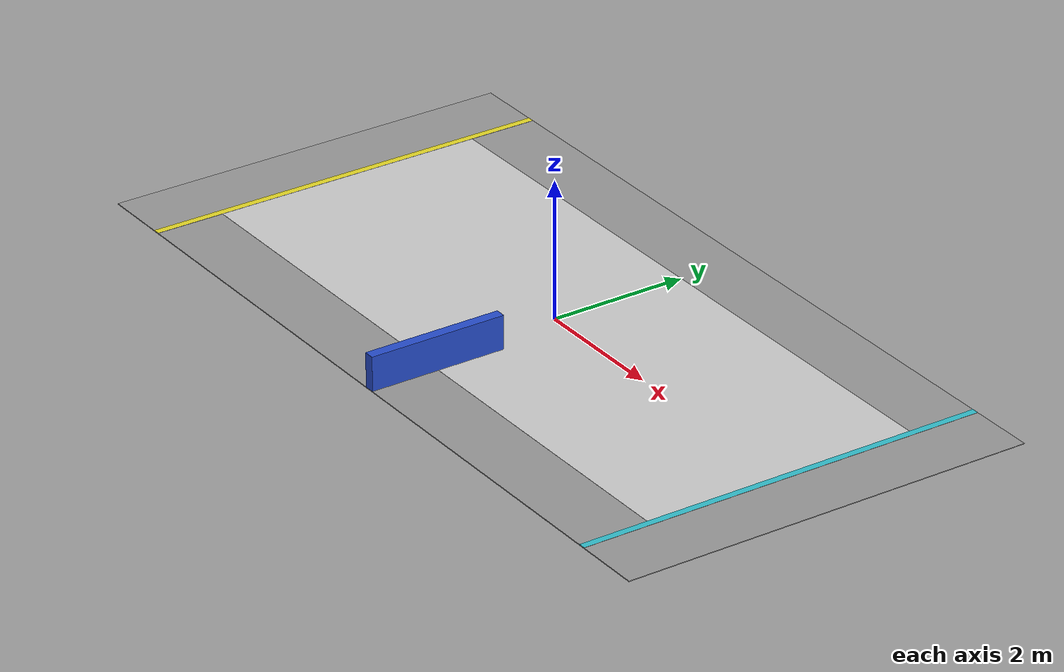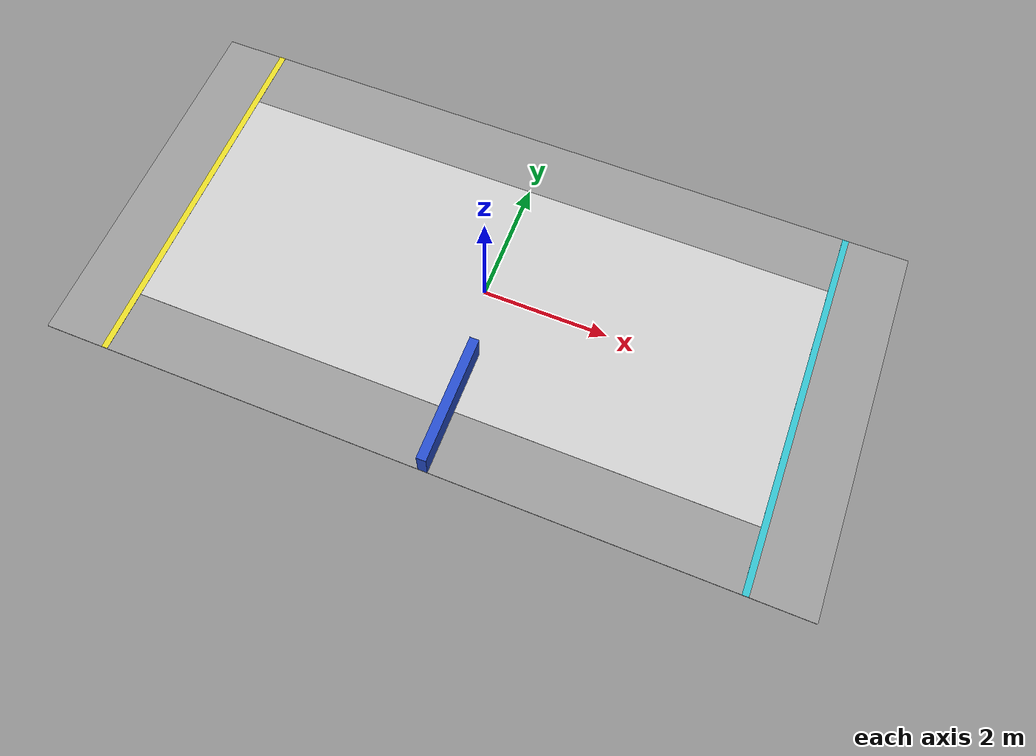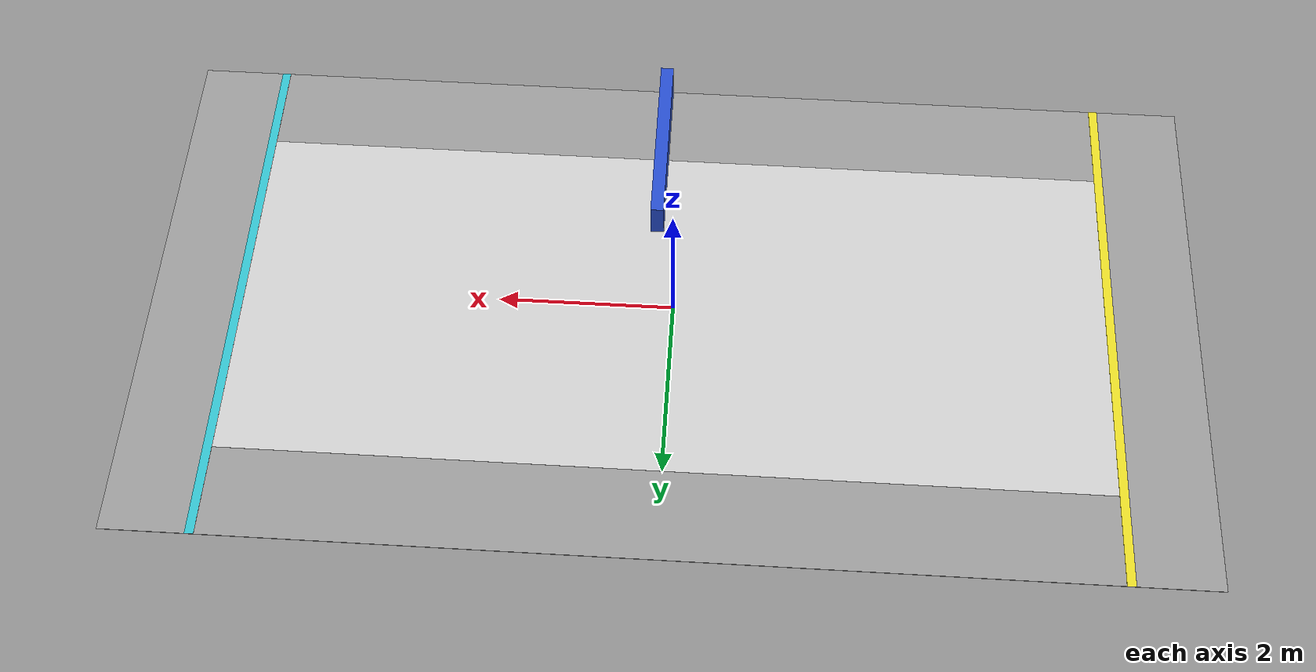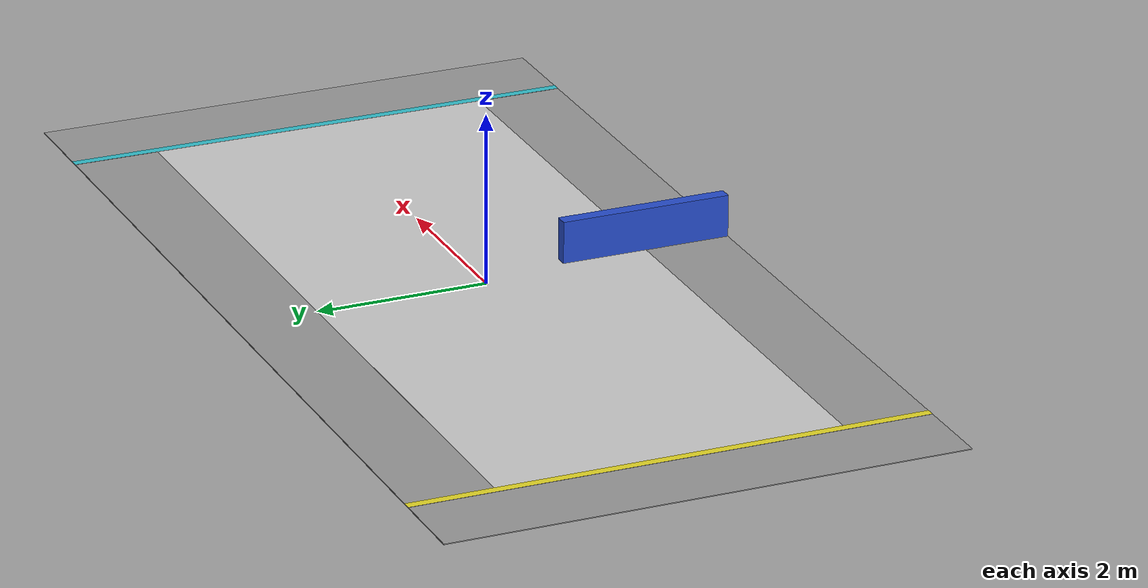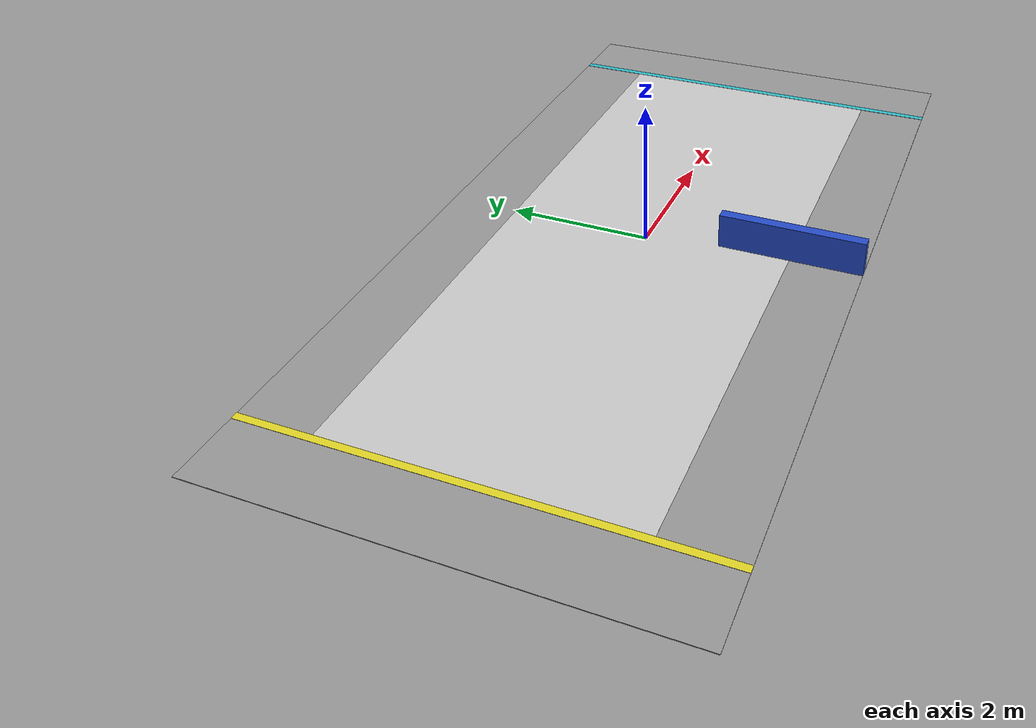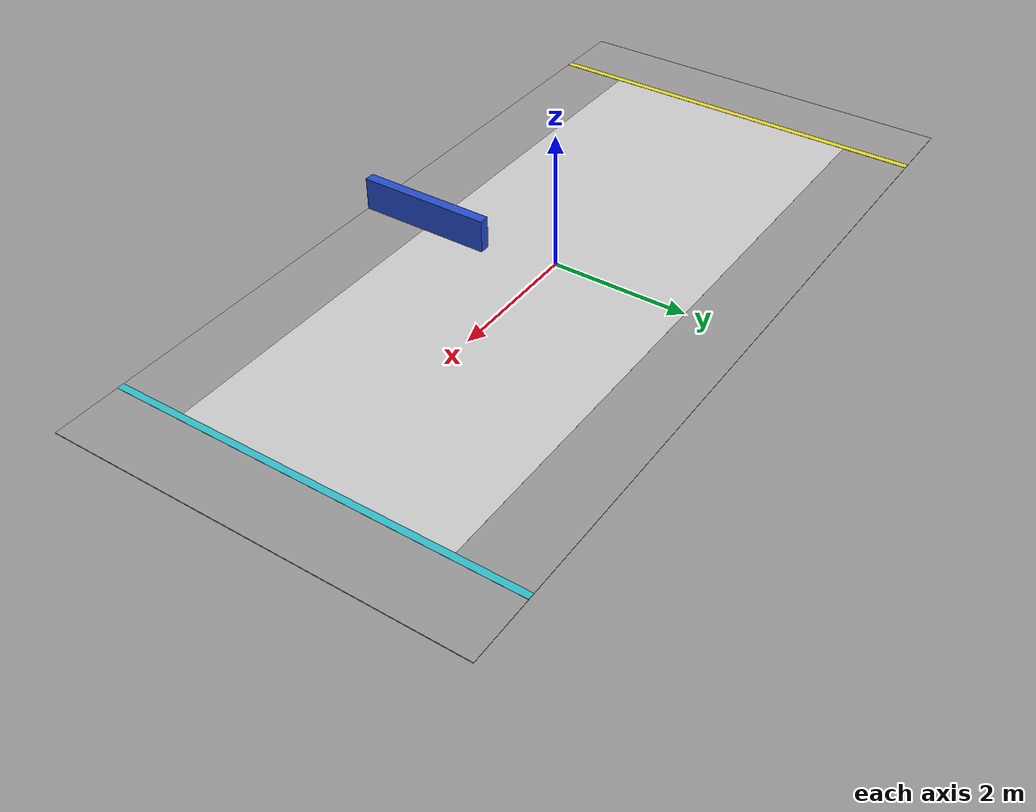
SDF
<sdf version="1.6">
  <world name="corredor">
    <scene>
      <ambient>0.6 0.6 0.6 1</ambient>
      <background>0.7 0.7 0.7 1</background>
      <shadows>true</shadows>
    </scene>

    <include>
      <uri>model://sun</uri>
      <pose> -1.0 2.0 1.0 0 0 0</pose>
    </include>

    <model name="corredor_fundo">
      <pose frame="">0 0 0 0 0 0</pose>
      <static>true</static>
      <link name="corredor_link">
        <inertial>
          <mass>1</mass>
          <inertia>
            <ixx>0.1667</ixx>
            <ixy>0</ixy>
            <ixz>0</ixz>
            <iyy>0.1667</iyy>
            <iyz>0</iyz>
            <izz>0.1667</izz>
          </inertia>
        </inertial>
        <visual name="corredor_visual">
          <geometry>
            <box>
              <size>12 6 0.01</size>
            </box>
          </geometry>
          <material>
            <script>
              <uri>file://media/materials/scripts/gazebo.material</uri>
              <name>Gazebo/Gray</name>
            </script>
          </material>
        </visual>
        <collision name="corredor_collision">
          <geometry>
            <box>
              <size>12 6 0.01</size>
            </box>
          </geometry>
        </collision>
      </link>
    </model>

    <model name="pista_central">
      <pose frame="">0 0 0 0 0 0</pose>
      <static>true</static>
      <link name="pista_central_link">
        <inertial>
          <mass>1</mass>
          <inertia>
            <ixx>0.1667</ixx>
            <ixy>0</ixy>
            <ixz>0</ixz>
            <iyy>0.1667</iyy>
            <iyz>0</iyz>
            <izz>0.1667</izz>
          </inertia>
        </inertial>
        <visual name="pista_central_visual">
          <geometry>
            <box>
              <size>10 4 0.012</size>
            </box>
          </geometry>
          <material>
            <script>
              <uri>file://media/materials/scripts/gazebo.material</uri>
              <name>Gazebo/LightGrey</name>
            </script>
          </material>
        </visual>
        <collision name="pista_central_collision">
          <geometry>
            <box>
              <size>10 4 0.01</size>
            </box>
          </geometry>
        </collision>
      </link>
    </model>

    <model name="linha_inicio">
      <pose frame="">-5 0 0.005 0 0 0</pose>
      <static>true</static>
      <link name="linha_inicio_link">
        <inertial>
          <mass>1</mass>
          <inertia>
            <ixx>0.1667</ixx>
            <ixy>0</ixy>
            <ixz>0</ixz>
            <iyy>0.1667</iyy>
            <iyz>0</iyz>
            <izz>0.1667</izz>
          </inertia>
        </inertial>
        <visual name="linha_inicio_visual">
          <geometry>
            <box>
              <size>0.1 6 0.005</size>
            </box>
          </geometry>
          <material>
            <script>
              <uri>file://media/materials/scripts/gazebo.material</uri>
              <name>Gazebo/Yellow</name>
            </script>
          </material>
        </visual>
        <collision name="linha_inicio_collision">
          <geometry>
            <box>
              <size>0.1 6 0.005</size>
            </box>
          </geometry>
        </collision>
      </link>
    </model>

    <model name="linha_fim">
      <pose frame="">5 0 0.005 0 0 0</pose>
      <static>true</static>
      <link name="linha_fim_link">
        <inertial>
          <mass>1</mass>
          <inertia>
            <ixx>0.1667</ixx>
            <ixy>0</ixy>
            <ixz>0</ixz>
            <iyy>0.1667</iyy>
            <iyz>0</iyz>
            <izz>0.1667</izz>
          </inertia>
        </inertial>
        <visual name="linha_fim_visual">
          <geometry>
            <box>
              <size>0.1 6 0.005</size>
            </box>
          </geometry>
          <material>
            <script>
              <uri>file://media/materials/scripts/gazebo.material</uri>
              <name>Gazebo/Cyan</name>
            </script>
          </material>
        </visual>
        <collision name="linha_fim_collision">
          <geometry>
            <box>
              <size>0.1 6 0.005</size>
            </box>
          </geometry>
        </collision>
      </link>
    </model>

    <model name="caixa_lateral_esquerda">
      <pose frame="">0.2397381869721853 -2 0.25 0 0 0</pose>
      <static>true</static>
      <link name="caixa_link">
        <inertial>
          <mass>1</mass>
          <inertia>
            <ixx>0.1667</ixx>
            <ixy>0</ixy>
            <ixz>0</ixz>
            <iyy>0.1667</iyy>
            <iyz>0</iyz>
            <izz>0.1667</izz>
          </inertia>
        </inertial>
        <visual name="caixa_visual">
          <geometry>
            <box>
              <size>0.15 2 0.5</size>
            </box>
          </geometry>
          <material>
            <script>
              <uri>file://media/materials/scripts/gazebo.material</uri>
              <name>Gazebo/Blue</name>
            </script>
          </material>
        </visual>
        <collision name="caixa_collision">
          <geometry>
            <box>
              <size>0.15 2 0.5</size>
            </box>
          </geometry>
        </collision>
      </link>
    </model>

    <gui fullscreen="0">
      <camera name="user_camera">
        <pose frame="">3 -7 10 -0 0.979642 2</pose>
        <view_controller>orbit</view_controller>
        <projection_type>perspective</projection_type>
      </camera>
    </gui>

  </world>
</sdf>
